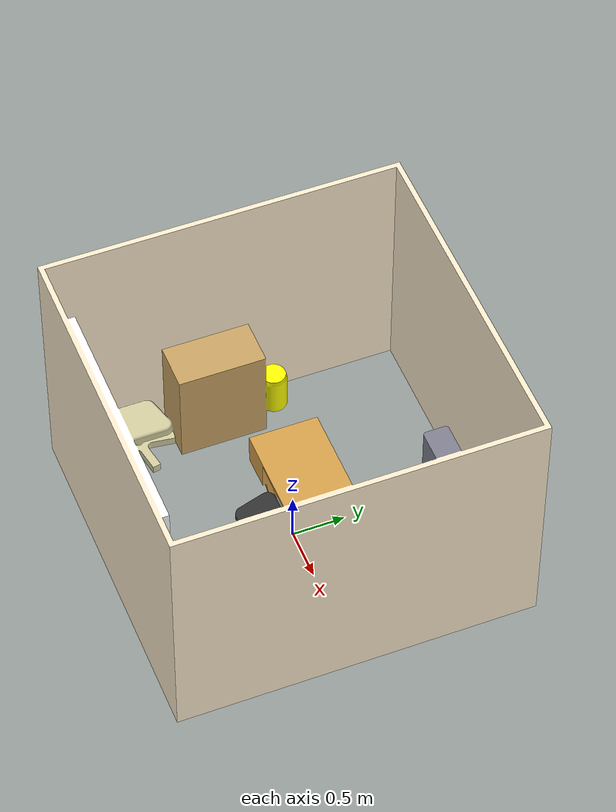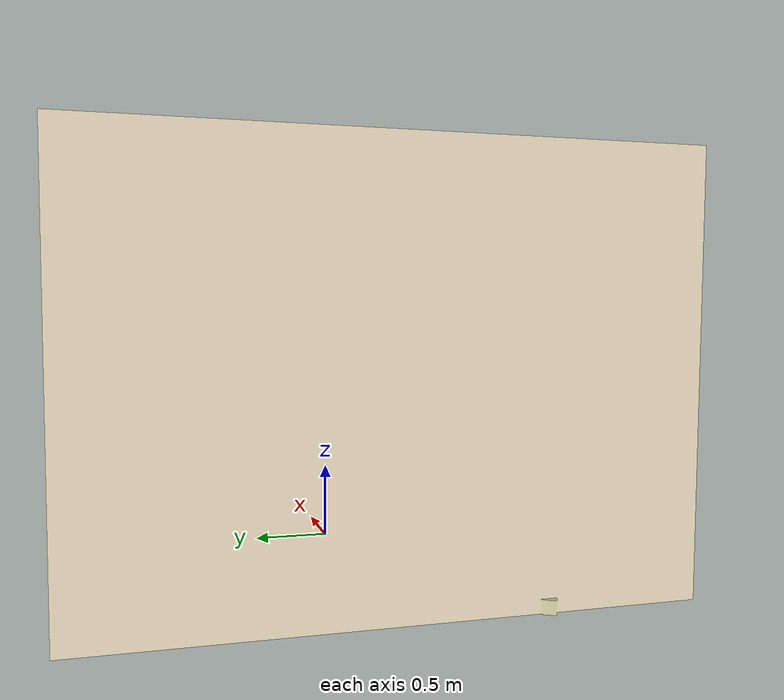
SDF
<?xml version="1.0" ?>
<sdf version="1.5">
  <model name='my_room'>
    <link name='link'>
      <visual name='visual'>
        <geometry>
          <mesh>
            <uri>model://my_room/models/simple_my_room/meshes/simple_my_room.dae</uri>
          </mesh>
        </geometry>
      </visual>
      <collision name='collision'>
        <geometry>
          <mesh>
            <uri>model://my_room/models/simple_my_room/meshes/simple_my_room.dae</uri>
          </mesh>
        </geometry>
      </collision>

      <pose>0 0 0 0 -0 0</pose>
      <inertial>
        <pose>0 0 0 0 -0 0</pose>
        <mass>1</mass>
        <inertia>
          <ixx>1</ixx>
          <ixy>0</ixy>
          <ixz>0</ixz>
          <iyy>1</iyy>
          <iyz>0</iyz>
          <izz>1</izz>
        </inertia>
      </inertial>
      <enable_wind>false</enable_wind>
    </link>
    <static>true</static>
    <self_collide>false</self_collide>
  </model>
</sdf>
